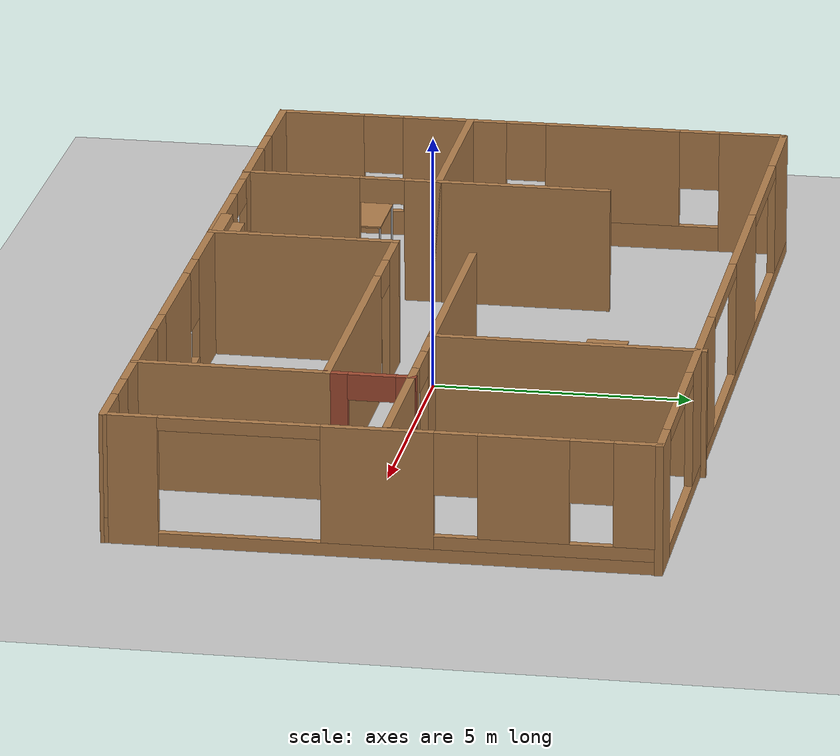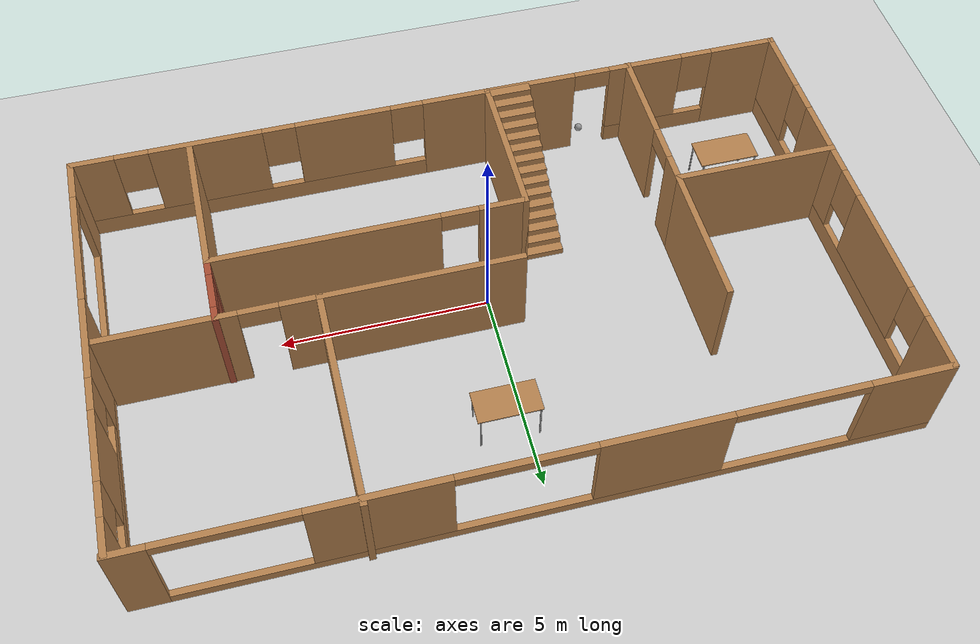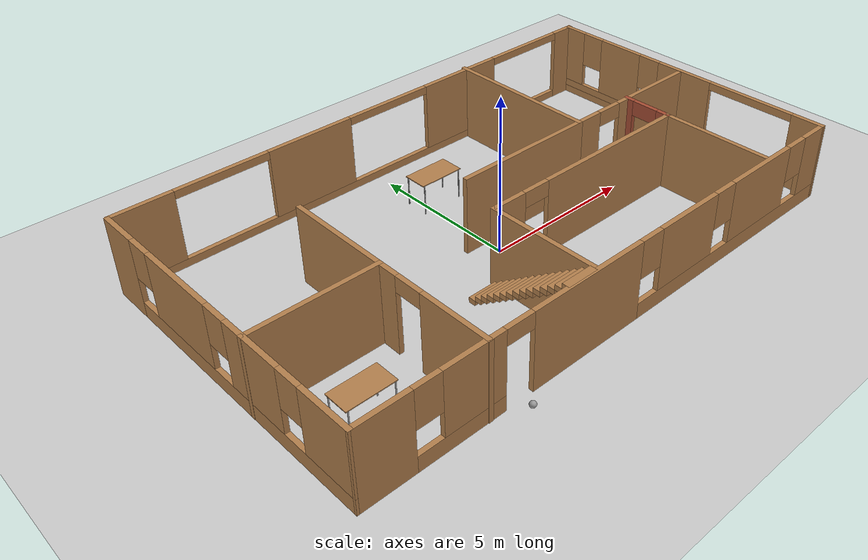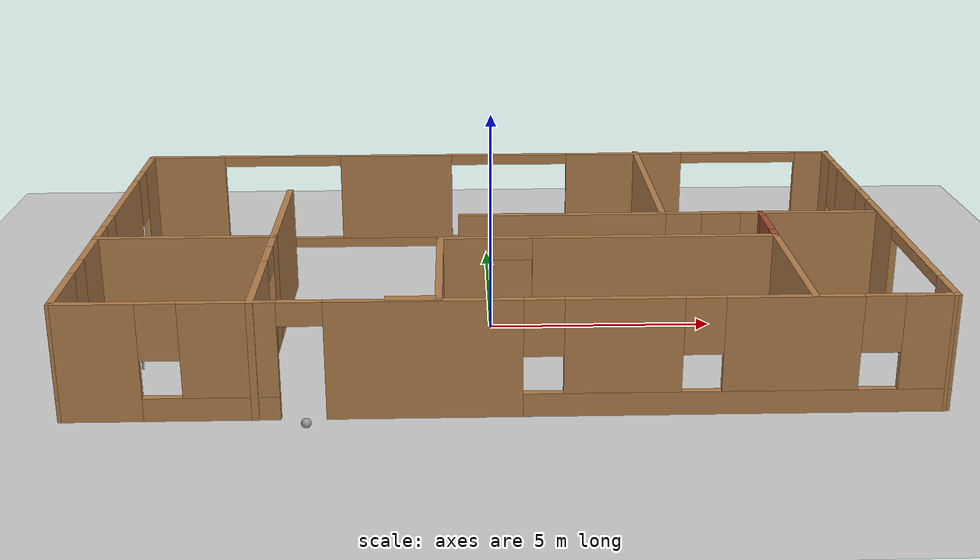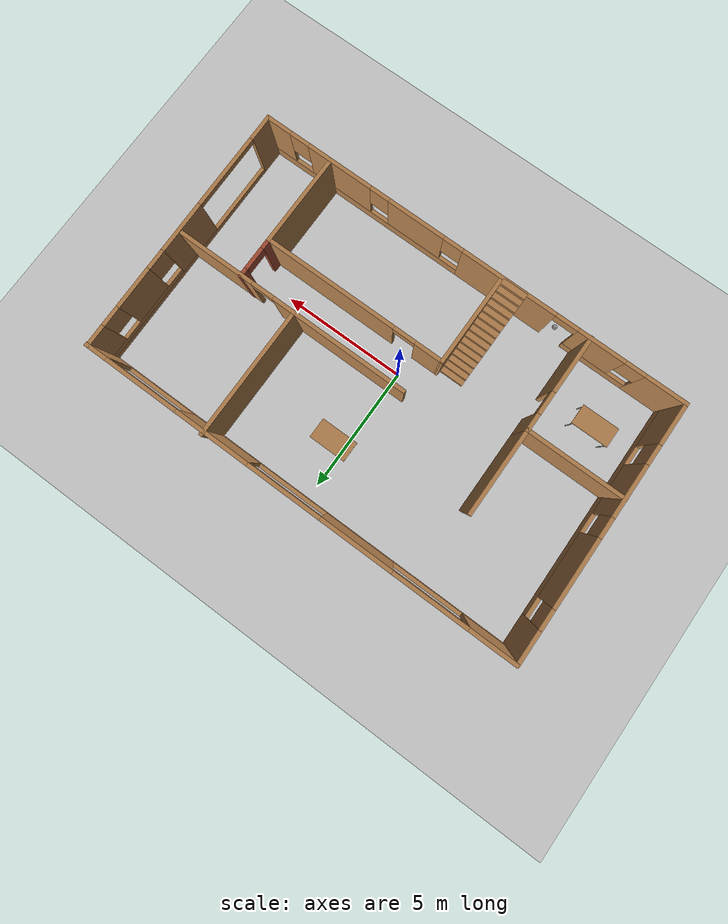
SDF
<sdf version="1.6">
 <world name="default">
  <plugin name="welcom_message" filename="libwelcom.so"/>
  <light name="sun" type="directional">
   <pose>0 0 10 0 -0 0</pose>
   <diffuse>0.8 0.8 0.8 1</diffuse>
   <specular>0.2 0.2 0.2 1</specular>
   <attenuation>
    <range>1000</range>
    <constant>0.9</constant>
    <linear>0.01</linear>
    <quadratic>0.001</quadratic>
   </attenuation>
   <direction>-0.5 0.1 -0.9</direction>
  </light>
  <model name="ground_plane">
   <static>1</static>
   <link name="link">
    <collision name="collision">
     <geometry><plane><normal>0 0 1</normal><size>100 100</size></plane></geometry>
     <surface><friction><ode><mu>100</mu><mu2>50</mu2></ode></friction></surface>
    </collision>
    <visual name="visual">
     <cast_shadows>0</cast_shadows>
     <geometry><plane><normal>0 0 1</normal><size>100 100</size></plane></geometry>
     <material>
      <script><uri>file://media/materials/scripts/gazebo.material</uri><name>Gazebo/Grey</name></script>
     </material>
    </visual>
   </link>
  </model>
  <gravity>0 0 -9.8</gravity>
  <magnetic_field>6e-06 2.3e-05 -4.2e-05</magnetic_field>
  <atmosphere type="adiabatic"/>
  <physics name="default_physics" default="0" type="ode">
   <max_step_size>0.001</max_step_size>
   <real_time_factor>1</real_time_factor>
   <real_time_update_rate>1000</real_time_update_rate>
  </physics>
  <scene><ambient>0.4 0.4 0.4 1</ambient><background>0.7 0.7 0.7 1</background><shadows>1</shadows></scene>
  <spherical_coordinates>
   <surface_model>EARTH_WGS84</surface_model>
   <latitude_deg>0</latitude_deg>
   <longitude_deg>0</longitude_deg>
   <elevation>0</elevation>
   <heading_deg>0</heading_deg>
  </spherical_coordinates>
  <model name="myhouse">
   <pose>0.17366 0.600434 0 0 -0 0</pose>
   <link name="Stairs_1">
    <visual name="Stairs_1_Visual_0">
     <pose>-1.85273 -1.76804 0.083333 0 -0 0</pose>
     <geometry><box><size>1 0.233333 0.166667</size></box></geometry>
     <material>
      <script><uri>file://media/materials/scripts/gazebo.material</uri><name>Gazebo/Wood</name></script>
      <ambient>1 1 1 1</ambient>
     </material>
     <meta><layer>0</layer></meta>
    </visual>
    <collision name="Stairs_1_Collision_0">
     <geometry><box><size>1 0.233333 0.166667</size></box></geometry>
     <pose>-1.85273 -1.76804 0.083333 0 -0 0</pose>
    </collision>
    <visual name="Stairs_1_Visual_1">
     <pose>-1.85273 -2.00138 0.25 0 -0 0</pose>
     <geometry><box><size>1 0.233333 0.166667</size></box></geometry>
     <material>
      <script><uri>file://media/materials/scripts/gazebo.material</uri><name>Gazebo/Wood</name></script>
      <ambient>1 1 1 1</ambient>
     </material>
     <meta><layer>0</layer></meta>
    </visual>
    <collision name="Stairs_1_Collision_1">
     <geometry><box><size>1 0.233333 0.166667</size></box></geometry>
     <pose>-1.85273 -2.00138 0.25 0 -0 0</pose>
    </collision>
    <visual name="Stairs_1_Visual_2">
     <pose>-1.85273 -2.23471 0.416667 0 -0 0</pose>
     <geometry><box><size>1 0.233333 0.166667</size></box></geometry>
     <material>
      <script><uri>file://media/materials/scripts/gazebo.material</uri><name>Gazebo/Wood</name></script>
      <ambient>1 1 1 1</ambient>
     </material>
     <meta><layer>0</layer></meta>
    </visual>
    <collision name="Stairs_1_Collision_2">
     <geometry><box><size>1 0.233333 0.166667</size></box></geometry>
     <pose>-1.85273 -2.23471 0.416667 0 -0 0</pose>
    </collision>
    <visual name="Stairs_1_Visual_3">
     <pose>-1.85273 -2.46804 0.583333 0 -0 0</pose>
     <geometry><box><size>1 0.233333 0.166667</size></box></geometry>
     <material>
      <script><uri>file://media/materials/scripts/gazebo.material</uri><name>Gazebo/Wood</name></script>
      <ambient>1 1 1 1</ambient>
     </material>
     <meta><layer>0</layer></meta>
    </visual>
    <collision name="Stairs_1_Collision_3">
     <geometry><box><size>1 0.233333 0.166667</size></box></geometry>
     <pose>-1.85273 -2.46804 0.583333 0 -0 0</pose>
    </collision>
    <visual name="Stairs_1_Visual_4">
     <pose>-1.85273 -2.70138 0.75 0 -0 0</pose>
     <geometry><box><size>1 0.233333 0.166667</size></box></geometry>
     <material>
      <script><uri>file://media/materials/scripts/gazebo.material</uri><name>Gazebo/Wood</name></script>
      <ambient>1 1 1 1</ambient>
     </material>
     <meta><layer>0</layer></meta>
    </visual>
    <collision name="Stairs_1_Collision_4">
     <geometry><box><size>1 0.233333 0.166667</size></box></geometry>
     <pose>-1.85273 -2.70138 0.75 0 -0 0</pose>
    </collision>
    <visual name="Stairs_1_Visual_5">
     <pose>-1.85273 -2.93471 0.916667 0 -0 0</pose>
     <geometry><box><size>1 0.233333 0.166667</size></box></geometry>
     <material>
      <script><uri>file://media/materials/scripts/gazebo.material</uri><name>Gazebo/Wood</name></script>
      <ambient>1 1 1 1</ambient>
     </material>
     <meta><layer>0</layer></meta>
    </visual>
    <collision name="Stairs_1_Collision_5">
     <geometry><box><size>1 0.233333 0.166667</size></box></geometry>
     <pose>-1.85273 -2.93471 0.916667 0 -0 0</pose>
    </collision>
    <visual name="Stairs_1_Visual_6">
     <pose>-1.85273 -3.16804 1.08333 0 -0 0</pose>
     <geometry><box><size>1 0.233333 0.166667</size></box></geometry>
     <material>
      <script><uri>file://media/materials/scripts/gazebo.material</uri><name>Gazebo/Wood</name></script>
      <ambient>1 1 1 1</ambient>
     </material>
     <meta><layer>0</layer></meta>
    </visual>
    <collision name="Stairs_1_Collision_6">
     <geometry><box><size>1 0.233333 0.166667</size></box></geometry>
     <pose>-1.85273 -3.16804 1.08333 0 -0 0</pose>
    </collision>
    <visual name="Stairs_1_Visual_7">
     <pose>-1.85273 -3.40138 1.25 0 -0 0</pose>
     <geometry><box><size>1 0.233333 0.166667</size></box></geometry>
     <material>
      <script><uri>file://media/materials/scripts/gazebo.material</uri><name>Gazebo/Wood</name></script>
      <ambient>1 1 1 1</ambient>
     </material>
     <meta><layer>0</layer></meta>
    </visual>
    <collision name="Stairs_1_Collision_7">
     <geometry><box><size>1 0.233333 0.166667</size></box></geometry>
     <pose>-1.85273 -3.40138 1.25 0 -0 0</pose>
    </collision>
    <visual name="Stairs_1_Visual_8">
     <pose>-1.85273 -3.63471 1.41667 0 -0 0</pose>
     <geometry><box><size>1 0.233333 0.166667</size></box></geometry>
     <material>
      <script><uri>file://media/materials/scripts/gazebo.material</uri><name>Gazebo/Wood</name></script>
      <ambient>1 1 1 1</ambient>
     </material>
     <meta><layer>0</layer></meta>
    </visual>
    <collision name="Stairs_1_Collision_8">
     <geometry><box><size>1 0.233333 0.166667</size></box></geometry>
     <pose>-1.85273 -3.63471 1.41667 0 -0 0</pose>
    </collision>
    <visual name="Stairs_1_Visual_9">
     <pose>-1.85273 -3.86804 1.58333 0 -0 0</pose>
     <geometry><box><size>1 0.233333 0.166667</size></box></geometry>
     <material>
      <script><uri>file://media/materials/scripts/gazebo.material</uri><name>Gazebo/Wood</name></script>
      <ambient>1 1 1 1</ambient>
     </material>
     <meta><layer>0</layer></meta>
    </visual>
    <collision name="Stairs_1_Collision_9">
     <geometry><box><size>1 0.233333 0.166667</size></box></geometry>
     <pose>-1.85273 -3.86804 1.58333 0 -0 0</pose>
    </collision>
    <visual name="Stairs_1_Visual_10">
     <pose>-1.85273 -4.10138 1.75 0 -0 0</pose>
     <geometry><box><size>1 0.233333 0.166667</size></box></geometry>
     <material>
      <script><uri>file://media/materials/scripts/gazebo.material</uri><name>Gazebo/Wood</name></script>
      <ambient>1 1 1 1</ambient>
     </material>
     <meta><layer>0</layer></meta>
    </visual>
    <collision name="Stairs_1_Collision_10">
     <geometry><box><size>1 0.233333 0.166667</size></box></geometry>
     <pose>-1.85273 -4.10138 1.75 0 -0 0</pose>
    </collision>
    <visual name="Stairs_1_Visual_11">
     <pose>-1.85273 -4.33471 1.91667 0 -0 0</pose>
     <geometry><box><size>1 0.233333 0.166667</size></box></geometry>
     <material>
      <script><uri>file://media/materials/scripts/gazebo.material</uri><name>Gazebo/Wood</name></script>
      <ambient>1 1 1 1</ambient>
     </material>
     <meta><layer>0</layer></meta>
    </visual>
    <collision name="Stairs_1_Collision_11">
     <geometry><box><size>1 0.233333 0.166667</size></box></geometry>
     <pose>-1.85273 -4.33471 1.91667 0 -0 0</pose>
    </collision>
    <visual name="Stairs_1_Visual_12">
     <pose>-1.85273 -4.56804 2.08333 0 -0 0</pose>
     <geometry><box><size>1 0.233333 0.166667</size></box></geometry>
     <material>
      <script><uri>file://media/materials/scripts/gazebo.material</uri><name>Gazebo/Wood</name></script>
      <ambient>1 1 1 1</ambient>
     </material>
     <meta><layer>0</layer></meta>
    </visual>
    <collision name="Stairs_1_Collision_12">
     <geometry><box><size>1 0.233333 0.166667</size></box></geometry>
     <pose>-1.85273 -4.56804 2.08333 0 -0 0</pose>
    </collision>
    <visual name="Stairs_1_Visual_13">
     <pose>-1.85273 -4.80138 2.25 0 -0 0</pose>
     <geometry><box><size>1 0.233333 0.166667</size></box></geometry>
     <material>
      <script><uri>file://media/materials/scripts/gazebo.material</uri><name>Gazebo/Wood</name></script>
      <ambient>1 1 1 1</ambient>
     </material>
     <meta><layer>0</layer></meta>
    </visual>
    <collision name="Stairs_1_Collision_13">
     <geometry><box><size>1 0.233333 0.166667</size></box></geometry>
     <pose>-1.85273 -4.80138 2.25 0 -0 0</pose>
    </collision>
    <visual name="Stairs_1_Visual_14">
     <pose>-1.85273 -5.03471 2.41667 0 -0 0</pose>
     <geometry><box><size>1 0.233333 0.166667</size></box></geometry>
     <material>
      <script><uri>file://media/materials/scripts/gazebo.material</uri><name>Gazebo/Wood</name></script>
      <ambient>1 1 1 1</ambient>
     </material>
     <meta><layer>0</layer></meta>
    </visual>
    <collision name="Stairs_1_Collision_14">
     <geometry><box><size>1 0.233333 0.166667</size></box></geometry>
     <pose>-1.85273 -5.03471 2.41667 0 -0 0</pose>
    </collision>
   </link>
   <link name="Wall_1">
    <pose>-8.8 -0.057051 0 0 0 -1.56387</pose>
    <visual name="Wall_1_Visual_0">
     <pose>-4.485 0 1.25 0 -0 0</pose>
     <geometry><box><size>1.33925 0.15 2.5</size></box></geometry>
     <material>
      <script><uri>file://media/materials/scripts/gazebo.material</uri><name>Gazebo/Wood</name></script>
      <ambient>1 1 1 1</ambient>
     </material>
     <meta><layer>0</layer></meta>
    </visual>
    <collision name="Wall_1_Collision_0">
     <geometry><box><size>1.33925 0.15 2.5</size></box></geometry>
     <pose>-4.485 0 1.25 0 -0 0</pose>
    </collision>
    <visual name="Wall_1_Visual_1">
     <pose>0.669623 0 0.25 0 -0 0</pose>
     <geometry><box><size>8.97 0.15 0.5</size></box></geometry>
     <material>
      <script><uri>file://media/materials/scripts/gazebo.material</uri><name>Gazebo/Wood</name></script>
      <ambient>1 1 1 1</ambient>
     </material>
     <meta><layer>0</layer></meta>
    </visual>
    <collision name="Wall_1_Collision_1">
     <geometry><box><size>8.97 0.15 0.5</size></box></geometry>
     <pose>0.669623 0 0.25 0 -0 0</pose>
    </collision>
    <visual name="Wall_1_Visual_2">
     <pose>-1.6569 0 1.5 0 -0 0</pose>
     <geometry><box><size>2.71694 0.15 2</size></box></geometry>
     <material>
      <script><uri>file://media/materials/scripts/gazebo.material</uri><name>Gazebo/Wood</name></script>
      <ambient>1 1 1 1</ambient>
     </material>
     <meta><layer>0</layer></meta>
    </visual>
    <collision name="Wall_1_Collision_2">
     <geometry><box><size>2.71694 0.15 2</size></box></geometry>
     <pose>-1.6569 0 1.5 0 -0 0</pose>
    </collision>
    <visual name="Wall_1_Visual_3">
     <pose>1.55542 0 1.5 0 -0 0</pose>
     <geometry><box><size>2.1077 0.15 2</size></box></geometry>
     <material>
      <script><uri>file://media/materials/scripts/gazebo.material</uri><name>Gazebo/Wood</name></script>
      <ambient>1 1 1 1</ambient>
     </material>
     <meta><layer>0</layer></meta>
    </visual>
    <collision name="Wall_1_Collision_3">
     <geometry><box><size>2.1077 0.15 2</size></box></geometry>
     <pose>1.55542 0 1.5 0 -0 0</pose>
    </collision>
    <visual name="Wall_1_Visual_4">
     <pose>4.28194 0 1.5 0 -0 0</pose>
     <geometry><box><size>1.74535 0.15 2</size></box></geometry>
     <material>
      <script><uri>file://media/materials/scripts/gazebo.material</uri><name>Gazebo/Wood</name></script>
      <ambient>1 1 1 1</ambient>
     </material>
     <meta><layer>0</layer></meta>
    </visual>
    <collision name="Wall_1_Collision_4">
     <geometry><box><size>1.74535 0.15 2</size></box></geometry>
     <pose>4.28194 0 1.5 0 -0 0</pose>
    </collision>
    <visual name="Wall_1_Visual_5">
     <pose>-3.41537 0 1.9 0 -0 0</pose>
     <geometry><box><size>0.8 0.15 1.2</size></box></geometry>
     <material>
      <script><uri>file://media/materials/scripts/gazebo.material</uri><name>Gazebo/Wood</name></script>
      <ambient>1 1 1 1</ambient>
     </material>
     <meta><layer>0</layer></meta>
    </visual>
    <collision name="Wall_1_Collision_5">
     <geometry><box><size>0.8 0.15 1.2</size></box></geometry>
     <pose>-3.41537 0 1.9 0 -0 0</pose>
    </collision>
    <visual name="Wall_1_Visual_6">
     <pose>0.10157 0 1.9 0 -0 0</pose>
     <geometry><box><size>0.8 0.15 1.2</size></box></geometry>
     <material>
      <script><uri>file://media/materials/scripts/gazebo.material</uri><name>Gazebo/Wood</name></script>
      <ambient>1 1 1 1</ambient>
     </material>
     <meta><layer>0</layer></meta>
    </visual>
    <collision name="Wall_1_Collision_6">
     <geometry><box><size>0.8 0.15 1.2</size></box></geometry>
     <pose>0.10157 0 1.9 0 -0 0</pose>
    </collision>
    <visual name="Wall_1_Visual_7">
     <pose>3.00927 0 1.9 0 -0 0</pose>
     <geometry><box><size>0.8 0.15 1.2</size></box></geometry>
     <material>
      <script><uri>file://media/materials/scripts/gazebo.material</uri><name>Gazebo/Wood</name></script>
      <ambient>1 1 1 1</ambient>
     </material>
     <meta><layer>0</layer></meta>
    </visual>
    <collision name="Wall_1_Collision_7">
     <geometry><box><size>0.8 0.15 1.2</size></box></geometry>
     <pose>3.00927 0 1.9 0 -0 0</pose>
    </collision>
   </link>
   <link name="Wall_10">
    <collision name="Wall_10_Collision">
     <geometry><box><size>4.75 0.15 2.5</size></box></geometry>
     <pose>0 0 1.25 0 -0 0</pose>
    </collision>
    <visual name="Wall_10_Visual">
     <pose>0 0 1.25 0 -0 0</pose>
     <geometry><box><size>4.75 0.15 2.5</size></box></geometry>
     <material>
      <script><uri>file://media/materials/scripts/gazebo.material</uri><name>Gazebo/Wood</name></script>
      <ambient>1 1 1 1</ambient>
     </material>
     <meta><layer>0</layer></meta>
    </visual>
    <pose>1.47718 0.052269 0 0 -0 3.14159</pose>
   </link>
   <link name="Wall_12">
    <pose>6.20218 0.052269 0 0 -0 0</pose>
    <visual name="Wall_12_Visual_0">
     <pose>-2.01517 0 1.25 0 -0 0</pose>
     <geometry><box><size>0.969666 0.15 2.5</size></box></geometry>
     <material>
      <script><uri>file://media/materials/scripts/gazebo.material</uri><name>Gazebo/Wood</name></script>
      <ambient>1 1 1 1</ambient>
     </material>
     <meta><layer>0</layer></meta>
    </visual>
    <collision name="Wall_12_Collision_0">
     <geometry><box><size>0.969666 0.15 2.5</size></box></geometry>
     <pose>-2.01517 0 1.25 0 -0 0</pose>
    </collision>
    <visual name="Wall_12_Visual_1">
     <pose>0.934833 0 1.25 0 -0 0</pose>
     <geometry><box><size>3.13033 0.15 2.5</size></box></geometry>
     <material>
      <script><uri>file://media/materials/scripts/gazebo.material</uri><name>Gazebo/Wood</name></script>
      <ambient>1 1 1 1</ambient>
     </material>
     <meta><layer>0</layer></meta>
    </visual>
    <collision name="Wall_12_Collision_1">
     <geometry><box><size>3.13033 0.15 2.5</size></box></geometry>
     <pose>0.934833 0 1.25 0 -0 0</pose>
    </collision>
    <visual name="Wall_12_Visual_2">
     <pose>-1.08033 0 2.25 0 -0 0</pose>
     <geometry><box><size>0.9 0.15 0.5</size></box></geometry>
     <material>
      <script><uri>file://media/materials/scripts/gazebo.material</uri><name>Gazebo/Wood</name></script>
      <ambient>1 1 1 1</ambient>
     </material>
     <meta><layer>0</layer></meta>
    </visual>
    <collision name="Wall_12_Collision_2">
     <geometry><box><size>0.9 0.15 0.5</size></box></geometry>
     <pose>-1.08033 0 2.25 0 -0 0</pose>
    </collision>
   </link>
   <link name="Wall_14">
    <pose>-4.9454 -3.22727 0 0 0 -1.5708</pose>
    <visual name="Wall_14_Visual_0">
     <pose>-1.62739 0 1.25 0 -0 0</pose>
     <geometry><box><size>0.74522 0.15 2.5</size></box></geometry>
     <material>
      <script><uri>file://media/materials/scripts/gazebo.material</uri><name>Gazebo/Wood</name></script>
      <ambient>1 1 1 1</ambient>
     </material>
     <meta><layer>0</layer></meta>
    </visual>
    <collision name="Wall_14_Collision_0">
     <geometry><box><size>0.74522 0.15 2.5</size></box></geometry>
     <pose>-1.62739 0 1.25 0 -0 0</pose>
    </collision>
    <visual name="Wall_14_Visual_1">
     <pose>0.82261 0 1.25 0 -0 0</pose>
     <geometry><box><size>2.35478 0.15 2.5</size></box></geometry>
     <material>
      <script><uri>file://media/materials/scripts/gazebo.material</uri><name>Gazebo/Wood</name></script>
      <ambient>1 1 1 1</ambient>
     </material>
     <meta><layer>0</layer></meta>
    </visual>
    <collision name="Wall_14_Collision_1">
     <geometry><box><size>2.35478 0.15 2.5</size></box></geometry>
     <pose>0.82261 0 1.25 0 -0 0</pose>
    </collision>
    <visual name="Wall_14_Visual_2">
     <pose>-0.80478 0 2.25 0 -0 0</pose>
     <geometry><box><size>0.9 0.15 0.5</size></box></geometry>
     <material>
      <script><uri>file://media/materials/scripts/gazebo.material</uri><name>Gazebo/Wood</name></script>
      <ambient>1 1 1 1</ambient>
     </material>
     <meta><layer>0</layer></meta>
    </visual>
    <collision name="Wall_14_Collision_2">
     <geometry><box><size>0.9 0.15 0.5</size></box></geometry>
     <pose>-0.80478 0 2.25 0 -0 0</pose>
    </collision>
   </link>
   <link name="Wall_16">
    <collision name="Wall_16_Collision">
     <geometry><box><size>3.75 0.15 2.5</size></box></geometry>
     <pose>0 0 1.25 0 -0 0</pose>
    </collision>
    <visual name="Wall_16_Visual">
     <pose>0 0 1.25 0 -0 0</pose>
     <geometry><box><size>3.75 0.15 2.5</size></box></geometry>
     <material>
      <script><uri>file://media/materials/scripts/gazebo.material</uri><name>Gazebo/Wood</name></script>
      <ambient>1 1 1 1</ambient>
     </material>
     <meta><layer>0</layer></meta>
    </visual>
    <pose>-1.3008 -3.32605 0 0 -0 1.5708</pose>
   </link>
   <link name="Wall_17">
    <pose>2.3742 -1.52605 0 0 -0 0</pose>
    <visual name="Wall_17_Visual_0">
     <pose>-3.1581 0 1.25 0 -0 0</pose>
     <geometry><box><size>1.1838 0.15 2.5</size></box></geometry>
     <material>
      <script><uri>file://media/materials/scripts/gazebo.material</uri><name>Gazebo/Wood</name></script>
      <ambient>1 1 1 1</ambient>
     </material>
     <meta><layer>0</layer></meta>
    </visual>
    <collision name="Wall_17_Collision_0">
     <geometry><box><size>1.1838 0.15 2.5</size></box></geometry>
     <pose>-3.1581 0 1.25 0 -0 0</pose>
    </collision>
    <visual name="Wall_17_Visual_1">
     <pose>1.0419 0 1.25 0 -0 0</pose>
     <geometry><box><size>5.4162 0.15 2.5</size></box></geometry>
     <material>
      <script><uri>file://media/materials/scripts/gazebo.material</uri><name>Gazebo/Wood</name></script>
      <ambient>1 1 1 1</ambient>
     </material>
     <meta><layer>0</layer></meta>
    </visual>
    <collision name="Wall_17_Collision_1">
     <geometry><box><size>5.4162 0.15 2.5</size></box></geometry>
     <pose>1.0419 0 1.25 0 -0 0</pose>
    </collision>
    <visual name="Wall_17_Visual_2">
     <pose>-2.1162 0 2.25 0 -0 0</pose>
     <geometry><box><size>0.9 0.15 0.5</size></box></geometry>
     <material>
      <script><uri>file://media/materials/scripts/gazebo.material</uri><name>Gazebo/Wood</name></script>
      <ambient>1 1 1 1</ambient>
     </material>
     <meta><layer>0</layer></meta>
    </visual>
    <collision name="Wall_17_Collision_2">
     <geometry><box><size>0.9 0.15 0.5</size></box></geometry>
     <pose>-2.1162 0 2.25 0 -0 0</pose>
    </collision>
   </link>
   <link name="Wall_18">
    <collision name="Wall_18_Collision">
     <geometry><box><size>3.75 0.15 2.5</size></box></geometry>
     <pose>0 0 1.25 0 -0 0</pose>
    </collision>
    <visual name="Wall_18_Visual">
     <pose>0 0 1.25 0 -0 0</pose>
     <geometry><box><size>3.75 0.15 2.5</size></box></geometry>
     <material>
      <script><uri>file://media/materials/scripts/gazebo.material</uri><name>Gazebo/Wood</name></script>
      <ambient>1 1 1 1</ambient>
     </material>
     <meta><layer>0</layer></meta>
    </visual>
    <pose>6.0492 -3.32605 0 0 0 -1.5708</pose>
   </link>
   <link name="Wall_2">
    <pose>0.035187 -5.13655 0 0 -0 0</pose>
    <visual name="Wall_2_Visual_0">
     <pose>-8.02867 0 1.25 0 -0 0</pose>
     <geometry><box><size>1.69265 0.15 2.5</size></box></geometry>
     <material>
      <script><uri>file://media/materials/scripts/gazebo.material</uri><name>Gazebo/Wood</name></script>
      <ambient>1 1 1 1</ambient>
     </material>
     <meta><layer>0</layer></meta>
    </visual>
    <collision name="Wall_2_Collision_0">
     <geometry><box><size>1.69265 0.15 2.5</size></box></geometry>
     <pose>-8.02867 0 1.25 0 -0 0</pose>
    </collision>
    <visual name="Wall_2_Visual_1">
     <pose>-1.63349 0 1.25 0 -0 0</pose>
     <geometry><box><size>3.89148 0.15 2.5</size></box></geometry>
     <material>
      <script><uri>file://media/materials/scripts/gazebo.material</uri><name>Gazebo/Wood</name></script>
      <ambient>1 1 1 1</ambient>
     </material>
     <meta><layer>0</layer></meta>
    </visual>
    <collision name="Wall_2_Collision_1">
     <geometry><box><size>3.89148 0.15 2.5</size></box></geometry>
     <pose>-1.63349 0 1.25 0 -0 0</pose>
    </collision>
    <visual name="Wall_2_Visual_2">
     <pose>-5.83079 0 0.25 0 -0 0</pose>
     <geometry><box><size>2.70312 0.15 0.5</size></box></geometry>
     <material>
      <script><uri>file://media/materials/scripts/gazebo.material</uri><name>Gazebo/Wood</name></script>
      <ambient>1 1 1 1</ambient>
     </material>
     <meta><layer>0</layer></meta>
    </visual>
    <collision name="Wall_2_Collision_2">
     <geometry><box><size>2.70312 0.15 0.5</size></box></geometry>
     <pose>-5.83079 0 0.25 0 -0 0</pose>
    </collision>
    <visual name="Wall_2_Visual_3">
     <pose>4.59363 0 0.25 0 -0 0</pose>
     <geometry><box><size>8.56274 0.15 0.5</size></box></geometry>
     <material>
      <script><uri>file://media/materials/scripts/gazebo.material</uri><name>Gazebo/Wood</name></script>
      <ambient>1 1 1 1</ambient>
     </material>
     <meta><layer>0</layer></meta>
    </visual>
    <collision name="Wall_2_Collision_3">
     <geometry><box><size>8.56274 0.15 0.5</size></box></geometry>
     <pose>4.59363 0 0.25 0 -0 0</pose>
    </collision>
    <visual name="Wall_2_Visual_4">
     <pose>-5.43079 0 1.5 0 -0 0</pose>
     <geometry><box><size>1.90312 0.15 2</size></box></geometry>
     <material>
      <script><uri>file://media/materials/scripts/gazebo.material</uri><name>Gazebo/Wood</name></script>
      <ambient>1 1 1 1</ambient>
     </material>
     <meta><layer>0</layer></meta>
    </visual>
    <collision name="Wall_2_Collision_4">
     <geometry><box><size>1.90312 0.15 2</size></box></geometry>
     <pose>-5.43079 0 1.5 0 -0 0</pose>
    </collision>
    <visual name="Wall_2_Visual_5">
     <pose>-5.43079 0 1.5 0 -0 0</pose>
     <geometry><box><size>1.90312 0.15 2</size></box></geometry>
     <material>
      <script><uri>file://media/materials/scripts/gazebo.material</uri><name>Gazebo/Wood</name></script>
      <ambient>1 1 1 1</ambient>
     </material>
     <meta><layer>0</layer></meta>
    </visual>
    <collision name="Wall_2_Collision_5">
     <geometry><box><size>1.90312 0.15 2</size></box></geometry>
     <pose>-5.43079 0 1.5 0 -0 0</pose>
    </collision>
    <visual name="Wall_2_Visual_6">
     <pose>2.28765 0 1.5 0 -0 0</pose>
     <geometry><box><size>2.35079 0.15 2</size></box></geometry>
     <material>
      <script><uri>file://media/materials/scripts/gazebo.material</uri><name>Gazebo/Wood</name></script>
      <ambient>1 1 1 1</ambient>
     </material>
     <meta><layer>0</layer></meta>
    </visual>
    <collision name="Wall_2_Collision_6">
     <geometry><box><size>2.35079 0.15 2</size></box></geometry>
     <pose>2.28765 0 1.5 0 -0 0</pose>
    </collision>
    <visual name="Wall_2_Visual_7">
     <pose>5.62199 0 1.5 0 -0 0</pose>
     <geometry><box><size>2.71788 0.15 2</size></box></geometry>
     <material>
      <script><uri>file://media/materials/scripts/gazebo.material</uri><name>Gazebo/Wood</name></script>
      <ambient>1 1 1 1</ambient>
     </material>
     <meta><layer>0</layer></meta>
    </visual>
    <collision name="Wall_2_Collision_7">
     <geometry><box><size>2.71788 0.15 2</size></box></geometry>
     <pose>5.62199 0 1.5 0 -0 0</pose>
    </collision>
    <visual name="Wall_2_Visual_8">
     <pose>8.32796 0 1.5 0 -0 0</pose>
     <geometry><box><size>1.09407 0.15 2</size></box></geometry>
     <material>
      <script><uri>file://media/materials/scripts/gazebo.material</uri><name>Gazebo/Wood</name></script>
      <ambient>1 1 1 1</ambient>
     </material>
     <meta><layer>0</layer></meta>
    </visual>
    <collision name="Wall_2_Collision_8">
     <geometry><box><size>1.09407 0.15 2</size></box></geometry>
     <pose>8.32796 0 1.5 0 -0 0</pose>
    </collision>
    <visual name="Wall_2_Visual_9">
     <pose>-6.78235 0 1.9 0 -0 0</pose>
     <geometry><box><size>0.8 0.15 1.2</size></box></geometry>
     <material>
      <script><uri>file://media/materials/scripts/gazebo.material</uri><name>Gazebo/Wood</name></script>
      <ambient>1 1 1 1</ambient>
     </material>
     <meta><layer>0</layer></meta>
    </visual>
    <collision name="Wall_2_Collision_9">
     <geometry><box><size>0.8 0.15 1.2</size></box></geometry>
     <pose>-6.78235 0 1.9 0 -0 0</pose>
    </collision>
    <visual name="Wall_2_Visual_10">
     <pose>0.712256 0 1.9 0 -0 0</pose>
     <geometry><box><size>0.8 0.15 1.2</size></box></geometry>
     <material>
      <script><uri>file://media/materials/scripts/gazebo.material</uri><name>Gazebo/Wood</name></script>
      <ambient>1 1 1 1</ambient>
     </material>
     <meta><layer>0</layer></meta>
    </visual>
    <collision name="Wall_2_Collision_10">
     <geometry><box><size>0.8 0.15 1.2</size></box></geometry>
     <pose>0.712256 0 1.9 0 -0 0</pose>
    </collision>
    <visual name="Wall_2_Visual_11">
     <pose>3.86305 0 1.9 0 -0 0</pose>
     <geometry><box><size>0.8 0.15 1.2</size></box></geometry>
     <material>
      <script><uri>file://media/materials/scripts/gazebo.material</uri><name>Gazebo/Wood</name></script>
      <ambient>1 1 1 1</ambient>
     </material>
     <meta><layer>0</layer></meta>
    </visual>
    <collision name="Wall_2_Collision_11">
     <geometry><box><size>0.8 0.15 1.2</size></box></geometry>
     <pose>3.86305 0 1.9 0 -0 0</pose>
    </collision>
    <visual name="Wall_2_Visual_12">
     <pose>7.38093 0 1.9 0 -0 0</pose>
     <geometry><box><size>0.8 0.15 1.2</size></box></geometry>
     <material>
      <script><uri>file://media/materials/scripts/gazebo.material</uri><name>Gazebo/Wood</name></script>
      <ambient>1 1 1 1</ambient>
     </material>
     <meta><layer>0</layer></meta>
    </visual>
    <collision name="Wall_2_Collision_12">
     <geometry><box><size>0.8 0.15 1.2</size></box></geometry>
     <pose>7.38093 0 1.9 0 -0 0</pose>
    </collision>
    <visual name="Wall_2_Visual_13">
     <pose>-4.02923 0 2.25 0 -0 0</pose>
     <geometry><box><size>0.9 0.15 0.5</size></box></geometry>
     <material>
      <script><uri>file://media/materials/scripts/gazebo.material</uri><name>Gazebo/Wood</name></script>
      <ambient>1 1 1 1</ambient>
     </material>
     <meta><layer>0</layer></meta>
    </visual>
    <collision name="Wall_2_Collision_13">
     <geometry><box><size>0.9 0.15 0.5</size></box></geometry>
     <pose>-4.02923 0 2.25 0 -0 0</pose>
    </collision>
    <visual name="Wall_2_Visual_14">
     <pose>-4.02923 0 2.25 0 -0 0</pose>
     <geometry><box><size>0.9 0.15 0.5</size></box></geometry>
     <material>
      <script><uri>file://media/materials/scripts/gazebo.material</uri><name>Gazebo/Wood</name></script>
      <ambient>1 1 1 1</ambient>
     </material>
     <meta><layer>0</layer></meta>
    </visual>
    <collision name="Wall_2_Collision_14">
     <geometry><box><size>0.9 0.15 0.5</size></box></geometry>
     <pose>-4.02923 0 2.25 0 -0 0</pose>
    </collision>
   </link>
   <link name="Wall_20">
    <pose>6.0492 -0.726048 0 0 -0 1.5708</pose>
    <visual name="Wall_20_Visual_0">
     <pose>-0.638899 0 1.25 0 -0 0</pose>
     <geometry><box><size>0.472202 0.15 2.5</size></box></geometry>
     <material>
      <script><uri>file://media/materials/scripts/gazebo.material</uri><name>Gazebo/Bricks</name></script>
      <ambient>1 1 1 1</ambient>
     </material>
     <meta><layer>0</layer></meta>
    </visual>
    <collision name="Wall_20_Collision_0">
     <geometry><box><size>0.472202 0.15 2.5</size></box></geometry>
     <pose>-0.638899 0 1.25 0 -0 0</pose>
    </collision>
    <visual name="Wall_20_Visual_1">
     <pose>0.686101 0 1.25 0 -0 0</pose>
     <geometry><box><size>0.377798 0.15 2.5</size></box></geometry>
     <material>
      <script><uri>file://media/materials/scripts/gazebo.material</uri><name>Gazebo/Bricks</name></script>
      <ambient>1 1 1 1</ambient>
     </material>
     <meta><layer>0</layer></meta>
    </visual>
    <collision name="Wall_20_Collision_1">
     <geometry><box><size>0.377798 0.15 2.5</size></box></geometry>
     <pose>0.686101 0 1.25 0 -0 0</pose>
    </collision>
    <visual name="Wall_20_Visual_2">
     <pose>0.047202 0 2.25 0 -0 0</pose>
     <geometry><box><size>0.9 0.15 0.5</size></box></geometry>
     <material>
      <script><uri>file://media/materials/scripts/gazebo.material</uri><name>Gazebo/Bricks</name></script>
      <ambient>1 1 1 1</ambient>
     </material>
     <meta><layer>0</layer></meta>
    </visual>
    <collision name="Wall_20_Collision_2">
     <geometry><box><size>0.9 0.15 0.5</size></box></geometry>
     <pose>0.047202 0 2.25 0 -0 0</pose>
    </collision>
   </link>
   <link name="Wall_3">
    <pose>8.8 -0.057051 0 0 -0 1.57772</pose>
    <visual name="Wall_3_Visual_0">
     <pose>-4.61651 0 1.25 0 -0 0</pose>
     <geometry><box><size>1.07622 0.15 2.5</size></box></geometry>
     <material>
      <script><uri>file://media/materials/scripts/gazebo.material</uri><name>Gazebo/Wood</name></script>
      <ambient>1 1 1 1</ambient>
     </material>
     <meta><layer>0</layer></meta>
    </visual>
    <collision name="Wall_3_Collision_0">
     <geometry><box><size>1.07622 0.15 2.5</size></box></geometry>
     <pose>-4.61651 0 1.25 0 -0 0</pose>
    </collision>
    <visual name="Wall_3_Visual_1">
     <pose>0.538112 0 0.125 0 -0 0</pose>
     <geometry><box><size>9.23302 0.15 0.25</size></box></geometry>
     <material>
      <script><uri>file://media/materials/scripts/gazebo.material</uri><name>Gazebo/Wood</name></script>
      <ambient>1 1 1 1</ambient>
     </material>
     <meta><layer>0</layer></meta>
    </visual>
    <collision name="Wall_3_Collision_1">
     <geometry><box><size>9.23302 0.15 0.25</size></box></geometry>
     <pose>0.538112 0 0.125 0 -0 0</pose>
    </collision>
    <visual name="Wall_3_Visual_2">
     <pose>-0.041564 0 1.375 0 -0 0</pose>
     <geometry><box><size>2.07367 0.15 2.25</size></box></geometry>
     <material>
      <script><uri>file://media/materials/scripts/gazebo.material</uri><name>Gazebo/Wood</name></script>
      <ambient>1 1 1 1</ambient>
     </material>
     <meta><layer>0</layer></meta>
    </visual>
    <collision name="Wall_3_Collision_2">
     <geometry><box><size>2.07367 0.15 2.25</size></box></geometry>
     <pose>-0.041564 0 1.375 0 -0 0</pose>
    </collision>
    <visual name="Wall_3_Visual_3">
     <pose>3.07495 0 0.375 0 -0 0</pose>
     <geometry><box><size>4.15935 0.15 0.25</size></box></geometry>
     <material>
      <script><uri>file://media/materials/scripts/gazebo.material</uri><name>Gazebo/Wood</name></script>
      <ambient>1 1 1 1</ambient>
     </material>
     <meta><layer>0</layer></meta>
    </visual>
    <collision name="Wall_3_Collision_3">
     <geometry><box><size>4.15935 0.15 0.25</size></box></geometry>
     <pose>3.07495 0 0.375 0 -0 0</pose>
    </collision>
    <visual name="Wall_3_Visual_4">
     <pose>2.6351 0 1.5 0 -0 0</pose>
     <geometry><box><size>1.67966 0.15 2</size></box></geometry>
     <material>
      <script><uri>file://media/materials/scripts/gazebo.material</uri><name>Gazebo/Wood</name></script>
      <ambient>1 1 1 1</ambient>
     </material>
     <meta><layer>0</layer></meta>
    </visual>
    <collision name="Wall_3_Collision_4">
     <geometry><box><size>1.67966 0.15 2</size></box></geometry>
     <pose>2.6351 0 1.5 0 -0 0</pose>
    </collision>
    <visual name="Wall_3_Visual_5">
     <pose>4.71477 0 1.5 0 -0 0</pose>
     <geometry><box><size>0.879695 0.15 2</size></box></geometry>
     <material>
      <script><uri>file://media/materials/scripts/gazebo.material</uri><name>Gazebo/Wood</name></script>
      <ambient>1 1 1 1</ambient>
     </material>
     <meta><layer>0</layer></meta>
    </visual>
    <collision name="Wall_3_Collision_5">
     <geometry><box><size>0.879695 0.15 2</size></box></geometry>
     <pose>4.71477 0 1.5 0 -0 0</pose>
    </collision>
    <visual name="Wall_3_Visual_6">
     <pose>1.39527 0 1.9 0 -0 0</pose>
     <geometry><box><size>0.8 0.15 1.2</size></box></geometry>
     <material>
      <script><uri>file://media/materials/scripts/gazebo.material</uri><name>Gazebo/Wood</name></script>
      <ambient>1 1 1 1</ambient>
     </material>
     <meta><layer>0</layer></meta>
    </visual>
    <collision name="Wall_3_Collision_6">
     <geometry><box><size>0.8 0.15 1.2</size></box></geometry>
     <pose>1.39527 0 1.9 0 -0 0</pose>
    </collision>
    <visual name="Wall_3_Visual_7">
     <pose>3.87493 0 1.9 0 -0 0</pose>
     <geometry><box><size>0.8 0.15 1.2</size></box></geometry>
     <material>
      <script><uri>file://media/materials/scripts/gazebo.material</uri><name>Gazebo/Wood</name></script>
      <ambient>1 1 1 1</ambient>
     </material>
     <meta><layer>0</layer></meta>
    </visual>
    <collision name="Wall_3_Collision_7">
     <geometry><box><size>0.8 0.15 1.2</size></box></geometry>
     <pose>3.87493 0 1.9 0 -0 0</pose>
    </collision>
    <visual name="Wall_3_Visual_8">
     <pose>-2.5784 0 2.375 0 -0 0</pose>
     <geometry><box><size>3 0.15 0.25</size></box></geometry>
     <material>
      <script><uri>file://media/materials/scripts/gazebo.material</uri><name>Gazebo/Wood</name></script>
      <ambient>1 1 1 1</ambient>
     </material>
     <meta><layer>0</layer></meta>
    </visual>
    <collision name="Wall_3_Collision_8">
     <geometry><box><size>3 0.15 0.25</size></box></geometry>
     <pose>-2.5784 0 2.375 0 -0 0</pose>
    </collision>
   </link>
   <link name="Wall_4">
    <pose>-0.004597 5.05304 0 0 -0 3.14159</pose>
    <visual name="Wall_4_Visual_0">
     <pose>-8.42371 0 1.25 0 -0 0</pose>
     <geometry><box><size>0.902586 0.15 2.5</size></box></geometry>
     <material>
      <script><uri>file://media/materials/scripts/gazebo.material</uri><name>Gazebo/Wood</name></script>
      <ambient>1 1 1 1</ambient>
     </material>
     <meta><layer>0</layer></meta>
    </visual>
    <collision name="Wall_4_Collision_0">
     <geometry><box><size>0.902586 0.15 2.5</size></box></geometry>
     <pose>-8.42371 0 1.25 0 -0 0</pose>
    </collision>
    <visual name="Wall_4_Visual_1">
     <pose>0.451293 0 0.125 0 -0 0</pose>
     <geometry><box><size>16.8474 0.15 0.25</size></box></geometry>
     <material>
      <script><uri>file://media/materials/scripts/gazebo.material</uri><name>Gazebo/Wood</name></script>
      <ambient>1 1 1 1</ambient>
     </material>
     <meta><layer>0</layer></meta>
    </visual>
    <collision name="Wall_4_Collision_1">
     <geometry><box><size>16.8474 0.15 0.25</size></box></geometry>
     <pose>0.451293 0 0.125 0 -0 0</pose>
    </collision>
    <visual name="Wall_4_Visual_2">
     <pose>-3.45928 0 1.375 0 -0 0</pose>
     <geometry><box><size>3.02628 0.15 2.25</size></box></geometry>
     <material>
      <script><uri>file://media/materials/scripts/gazebo.material</uri><name>Gazebo/Wood</name></script>
      <ambient>1 1 1 1</ambient>
     </material>
     <meta><layer>0</layer></meta>
    </visual>
    <collision name="Wall_4_Collision_2">
     <geometry><box><size>3.02628 0.15 2.25</size></box></geometry>
     <pose>-3.45928 0 1.375 0 -0 0</pose>
    </collision>
    <visual name="Wall_4_Visual_3">
     <pose>2.50582 0 1.375 0 -0 0</pose>
     <geometry><box><size>2.90391 0.15 2.25</size></box></geometry>
     <material>
      <script><uri>file://media/materials/scripts/gazebo.material</uri><name>Gazebo/Wood</name></script>
      <ambient>1 1 1 1</ambient>
     </material>
     <meta><layer>0</layer></meta>
    </visual>
    <collision name="Wall_4_Collision_3">
     <geometry><box><size>2.90391 0.15 2.25</size></box></geometry>
     <pose>2.50582 0 1.375 0 -0 0</pose>
    </collision>
    <visual name="Wall_4_Visual_4">
     <pose>7.91639 0 1.375 0 -0 0</pose>
     <geometry><box><size>1.91722 0.15 2.25</size></box></geometry>
     <material>
      <script><uri>file://media/materials/scripts/gazebo.material</uri><name>Gazebo/Wood</name></script>
      <ambient>1 1 1 1</ambient>
     </material>
     <meta><layer>0</layer></meta>
    </visual>
    <collision name="Wall_4_Collision_4">
     <geometry><box><size>1.91722 0.15 2.25</size></box></geometry>
     <pose>7.91639 0 1.375 0 -0 0</pose>
    </collision>
    <visual name="Wall_4_Visual_5">
     <pose>-6.47241 0 2.375 0 -0 0</pose>
     <geometry><box><size>3 0.15 0.25</size></box></geometry>
     <material>
      <script><uri>file://media/materials/scripts/gazebo.material</uri><name>Gazebo/Wood</name></script>
      <ambient>1 1 1 1</ambient>
     </material>
     <meta><layer>0</layer></meta>
    </visual>
    <collision name="Wall_4_Collision_5">
     <geometry><box><size>3 0.15 0.25</size></box></geometry>
     <pose>-6.47241 0 2.375 0 -0 0</pose>
    </collision>
    <visual name="Wall_4_Visual_6">
     <pose>-0.446138 0 2.375 0 -0 0</pose>
     <geometry><box><size>3 0.15 0.25</size></box></geometry>
     <material>
      <script><uri>file://media/materials/scripts/gazebo.material</uri><name>Gazebo/Wood</name></script>
      <ambient>1 1 1 1</ambient>
     </material>
     <meta><layer>0</layer></meta>
    </visual>
    <collision name="Wall_4_Collision_6">
     <geometry><box><size>3 0.15 0.25</size></box></geometry>
     <pose>-0.446138 0 2.375 0 -0 0</pose>
    </collision>
    <visual name="Wall_4_Visual_7">
     <pose>5.45778 0 2.375 0 -0 0</pose>
     <geometry><box><size>3 0.15 0.25</size></box></geometry>
     <material>
      <script><uri>file://media/materials/scripts/gazebo.material</uri><name>Gazebo/Wood</name></script>
      <ambient>1 1 1 1</ambient>
     </material>
     <meta><layer>0</layer></meta>
    </visual>
    <collision name="Wall_4_Collision_7">
     <geometry><box><size>3 0.15 0.25</size></box></geometry>
     <pose>5.45778 0 2.375 0 -0 0</pose>
    </collision>
   </link>
   <link name="Wall_6">
    <collision name="Wall_6_Collision">
     <geometry><box><size>4 0.15 2.5</size></box></geometry>
     <pose>0 0 1.25 0 -0 0</pose>
    </collision>
    <visual name="Wall_6_Visual">
     <pose>0 0 1.25 0 -0 0</pose>
     <geometry><box><size>4 0.15 2.5</size></box></geometry>
     <material>
      <script><uri>file://media/materials/scripts/gazebo.material</uri><name>Gazebo/Wood</name></script>
      <ambient>1 1 1 1</ambient>
     </material>
     <meta><layer>0</layer></meta>
    </visual>
    <pose>-6.8704 -1.30227 0 0 -0 0</pose>
   </link>
   <link name="Wall_7">
    <collision name="Wall_7_Collision">
     <geometry><box><size>3.5 0.15 2.5</size></box></geometry>
     <pose>0 0 1.25 0 -0 0</pose>
    </collision>
    <visual name="Wall_7_Visual">
     <pose>0 0 1.25 0 -0 0</pose>
     <geometry><box><size>3.5 0.15 2.5</size></box></geometry>
     <material>
      <script><uri>file://media/materials/scripts/gazebo.material</uri><name>Gazebo/Wood</name></script>
      <ambient>1 1 1 1</ambient>
     </material>
     <meta><layer>0</layer></meta>
    </visual>
    <pose>-4.9454 0.372731 0 0 -0 1.5708</pose>
   </link>
   <link name="Wall_9">
    <collision name="Wall_9_Collision">
     <geometry><box><size>5.25 0.15 2.5</size></box></geometry>
     <pose>0 0 1.25 0 -0 0</pose>
    </collision>
    <visual name="Wall_9_Visual">
     <pose>0 0 1.25 0 -0 0</pose>
     <geometry><box><size>5.25 0.15 2.5</size></box></geometry>
     <material>
      <script><uri>file://media/materials/scripts/gazebo.material</uri><name>Gazebo/Wood</name></script>
      <ambient>1 1 1 1</ambient>
     </material>
     <meta><layer>0</layer></meta>
    </visual>
    <pose>3.77718 2.60227 0 0 0 -1.5708</pose>
   </link>
   <static>1</static>
  </model>
  <model name="table">
   <static>1</static>
   <link name="link">
    <collision name="surface">
     <pose>0 0 1 0 -0 0</pose>
     <geometry><box><size>1.5 0.8 0.03</size></box></geometry>
     <surface><friction><ode><mu>0.6</mu><mu2>0.6</mu2></ode></friction></surface>
    </collision>
    <visual name="visual1">
     <pose>0 0 1 0 -0 0</pose>
     <geometry><box><size>1.5 0.8 0.03</size></box></geometry>
     <material>
      <script><uri>file://media/materials/scripts/gazebo.material</uri><name>Gazebo/Wood</name></script>
     </material>
    </visual>
    <collision name="front_left_leg">
     <pose>0.68 0.38 0.5 0 -0 0</pose>
     <geometry><cylinder><radius>0.02</radius><length>1</length></cylinder></geometry>
    </collision>
    <visual name="front_left_leg">
     <pose>0.68 0.38 0.5 0 -0 0</pose>
     <geometry><cylinder><radius>0.02</radius><length>1</length></cylinder></geometry>
     <material>
      <script><uri>file://media/materials/scripts/gazebo.material</uri><name>Gazebo/Grey</name></script>
     </material>
    </visual>
    <collision name="front_right_leg">
     <pose>0.68 -0.38 0.5 0 -0 0</pose>
     <geometry><cylinder><radius>0.02</radius><length>1</length></cylinder></geometry>
    </collision>
    <visual name="front_right_leg">
     <pose>0.68 -0.38 0.5 0 -0 0</pose>
     <geometry><cylinder><radius>0.02</radius><length>1</length></cylinder></geometry>
     <material>
      <script><uri>file://media/materials/scripts/gazebo.material</uri><name>Gazebo/Grey</name></script>
     </material>
    </visual>
    <collision name="back_right_leg">
     <pose>-0.68 -0.38 0.5 0 -0 0</pose>
     <geometry><cylinder><radius>0.02</radius><length>1</length></cylinder></geometry>
    </collision>
    <visual name="back_right_leg">
     <pose>-0.68 -0.38 0.5 0 -0 0</pose>
     <geometry><cylinder><radius>0.02</radius><length>1</length></cylinder></geometry>
     <material>
      <script><uri>file://media/materials/scripts/gazebo.material</uri><name>Gazebo/Grey</name></script>
     </material>
    </visual>
    <collision name="back_left_leg">
     <pose>-0.68 0.38 0.5 0 -0 0</pose>
     <geometry><cylinder><radius>0.02</radius><length>1</length></cylinder></geometry>
    </collision>
    <visual name="back_left_leg">
     <pose>-0.68 0.38 0.5 0 -0 0</pose>
     <geometry><cylinder><radius>0.02</radius><length>1</length></cylinder></geometry>
     <material>
      <script><uri>file://media/materials/scripts/gazebo.material</uri><name>Gazebo/Grey</name></script>
     </material>
    </visual>
   </link>
   <pose>0.417161 3.34432 0 0 -0 0</pose>
  </model>
  <model name="table_0">
   <static>1</static>
   <link name="link">
    <collision name="surface">
     <pose>0 0 1 0 -0 0</pose>
     <geometry><box><size>1.5 0.8 0.03</size></box></geometry>
     <surface><friction><ode><mu>0.6</mu><mu2>0.6</mu2></ode></friction></surface>
    </collision>
    <visual name="visual1">
     <pose>0 0 1 0 -0 0</pose>
     <geometry><box><size>1.5 0.8 0.03</size></box></geometry>
     <material>
      <script><uri>file://media/materials/scripts/gazebo.material</uri><name>Gazebo/Wood</name></script>
     </material>
    </visual>
    <collision name="front_left_leg">
     <pose>0.68 0.38 0.5 0 -0 0</pose>
     <geometry><cylinder><radius>0.02</radius><length>1</length></cylinder></geometry>
    </collision>
    <visual name="front_left_leg">
     <pose>0.68 0.38 0.5 0 -0 0</pose>
     <geometry><cylinder><radius>0.02</radius><length>1</length></cylinder></geometry>
     <material>
      <script><uri>file://media/materials/scripts/gazebo.material</uri><name>Gazebo/Grey</name></script>
     </material>
    </visual>
    <collision name="front_right_leg">
     <pose>0.68 -0.38 0.5 0 -0 0</pose>
     <geometry><cylinder><radius>0.02</radius><length>1</length></cylinder></geometry>
    </collision>
    <visual name="front_right_leg">
     <pose>0.68 -0.38 0.5 0 -0 0</pose>
     <geometry><cylinder><radius>0.02</radius><length>1</length></cylinder></geometry>
     <material>
      <script><uri>file://media/materials/scripts/gazebo.material</uri><name>Gazebo/Grey</name></script>
     </material>
    </visual>
    <collision name="back_right_leg">
     <pose>-0.68 -0.38 0.5 0 -0 0</pose>
     <geometry><cylinder><radius>0.02</radius><length>1</length></cylinder></geometry>
    </collision>
    <visual name="back_right_leg">
     <pose>-0.68 -0.38 0.5 0 -0 0</pose>
     <geometry><cylinder><radius>0.02</radius><length>1</length></cylinder></geometry>
     <material>
      <script><uri>file://media/materials/scripts/gazebo.material</uri><name>Gazebo/Grey</name></script>
     </material>
    </visual>
    <collision name="back_left_leg">
     <pose>-0.68 0.38 0.5 0 -0 0</pose>
     <geometry><cylinder><radius>0.02</radius><length>1</length></cylinder></geometry>
    </collision>
    <visual name="back_left_leg">
     <pose>-0.68 0.38 0.5 0 -0 0</pose>
     <geometry><cylinder><radius>0.02</radius><length>1</length></cylinder></geometry>
     <material>
      <script><uri>file://media/materials/scripts/gazebo.material</uri><name>Gazebo/Grey</name></script>
     </material>
    </visual>
   </link>
   <pose>-6.82319 -2.49564 0 0 -0 0</pose>
  </model>
  <model name="white_ball">
   <link name="link_0">
    <inertial>
     <mass>1</mass>
     <inertia><ixx>0.1</ixx><ixy>0</ixy><ixz>0</ixz><iyy>0.1</iyy><iyz>0</iyz><izz>0.1</izz></inertia>
    </inertial>
    <visual name="visual">
     <geometry><sphere><radius>0.1</radius></sphere></geometry>
     <material>
      <lighting>1</lighting>
      <script><uri>file://media/materials/scripts/gazebo.material</uri><name>Gazebo/Grey</name></script>
      <shader type="pixel"><normal_map>__default__</normal_map></shader>
      <ambient>1 1 1 1</ambient>
      <diffuse>1 1 1 1</diffuse>
      <specular>1 1 1 1</specular>
      <emissive>0 0 0 1</emissive>
     </material>
    </visual>
    <collision name="collision">
     <geometry><sphere><radius>0.1</radius></sphere></geometry>
     <surface>
      <friction>
       <ode><mu>1</mu><mu2>1</mu2><fdir1>0 0 0</fdir1><slip1>0</slip1><slip2>0</slip2></ode>
       <torsional>
        <coefficient>1</coefficient>
        <patch_radius>0</patch_radius>
        <surface_radius>0</surface_radius>
        <use_patch_radius>1</use_patch_radius>
        <ode><slip>0</slip></ode>
       </torsional>
      </friction>
      <bounce><restitution_coefficient>0</restitution_coefficient><threshold>1e+06</threshold></bounce>
      <contact>
       <collide_without_contact>0</collide_without_contact>
       <collide_without_contact_bitmask>1</collide_without_contact_bitmask>
       <collide_bitmask>1</collide_bitmask>
       <ode>
        <soft_cfm>0</soft_cfm>
        <soft_erp>0.2</soft_erp>
        <kp>1e+13</kp>
        <kd>1</kd>
        <max_vel>0.01</max_vel>
        <min_depth>0</min_depth>
       </ode>
       <bullet>
        <split_impulse>1</split_impulse>
        <split_impulse_penetration_threshold>-0.01</split_impulse_penetration_threshold>
        <soft_cfm>0</soft_cfm>
        <soft_erp>0.2</soft_erp>
        <kp>1e+13</kp>
        <kd>1</kd>
       </bullet>
      </contact>
     </surface>
    </collision>
   </link>
   <static>0</static>
   <pose>-3.7399 -4.96234 0.1 0 -0 0</pose>
  </model>
  <plugin filename="libcollision_map_creator.so" name="collision_map_creator"/>
 </world>
</sdf>
